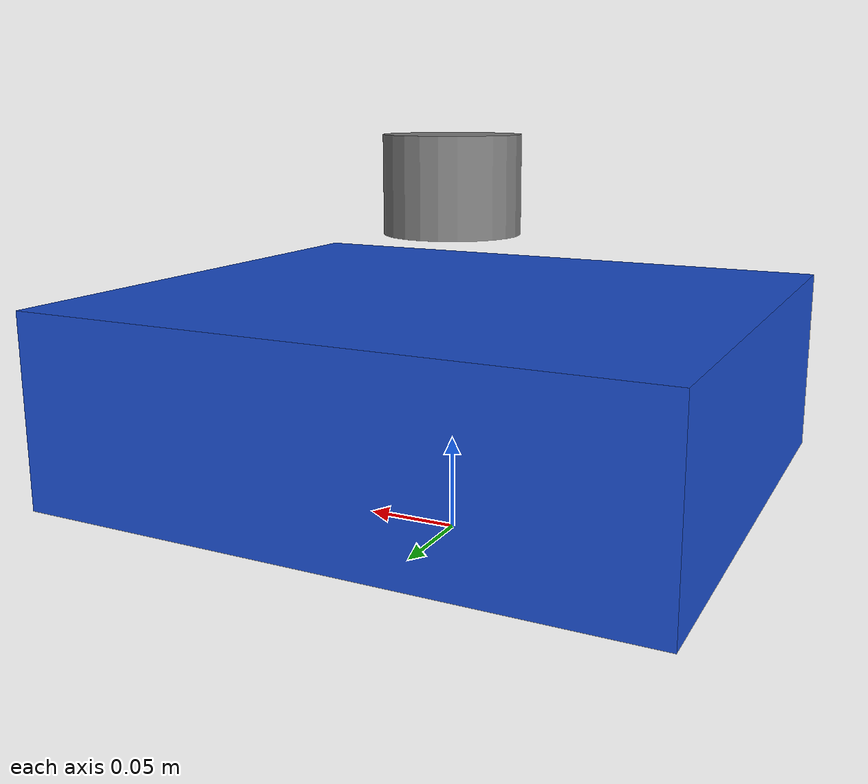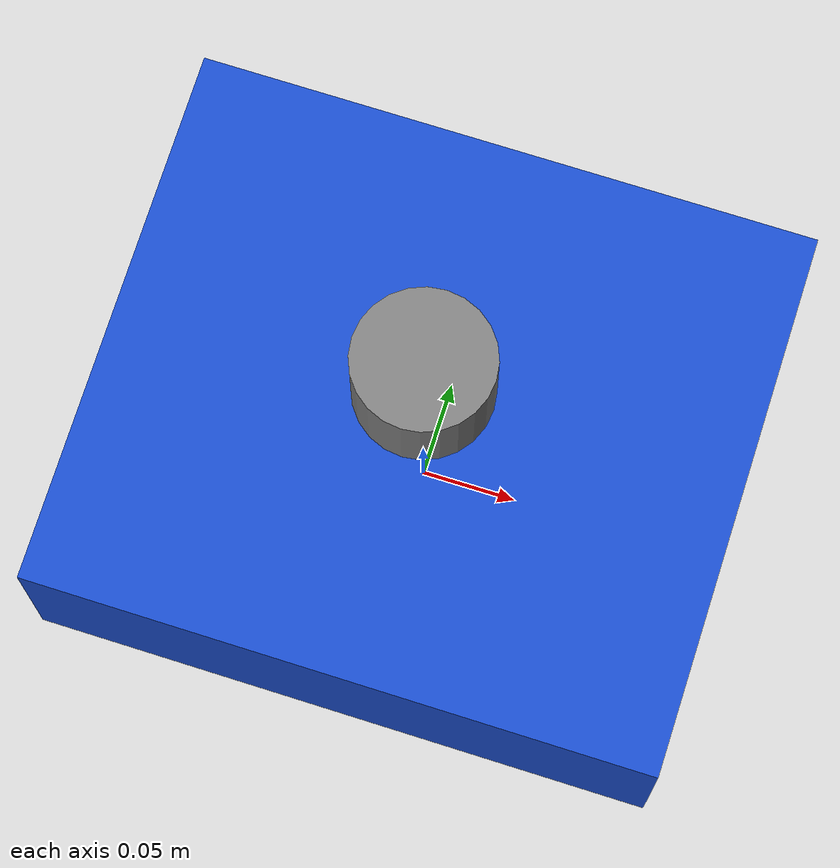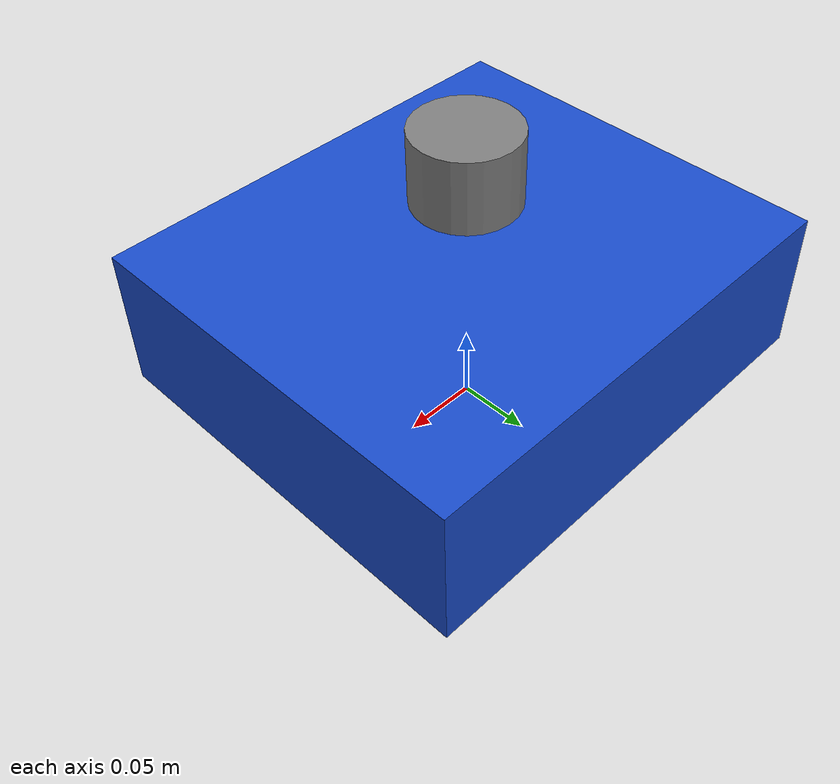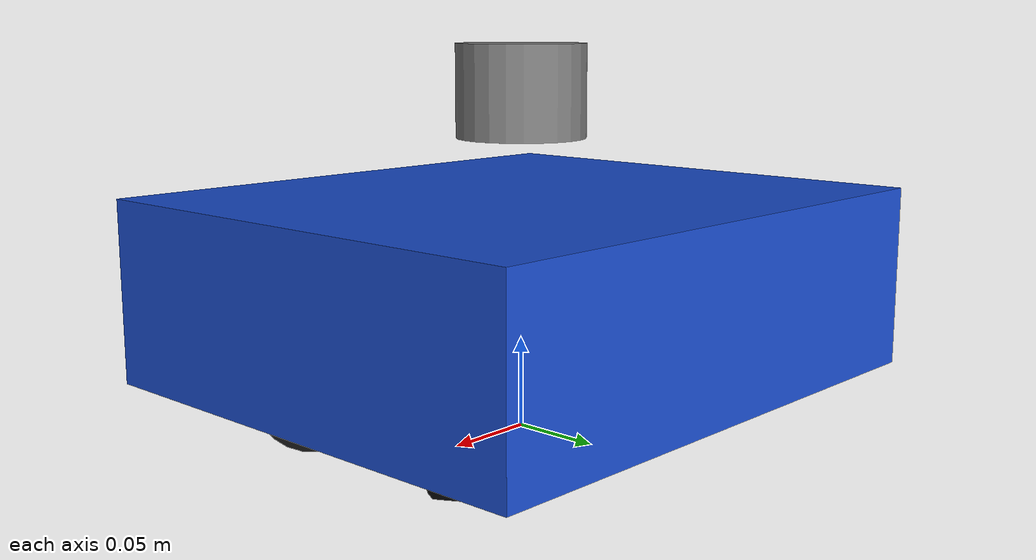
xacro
<?xml version="1.0"?>
<robot xmlns:xacro="http://www.ros.org/wiki/xacro" name="omni_robot">

  <!-- Robot dimensions -->
  <xacro:property name="base_length" value="0.32"/>
  <xacro:property name="base_width" value="0.28"/>
  <xacro:property name="base_height" value="0.10"/>

  <!-- Omni wheel -->
  <xacro:property name="wheel_radius" value="0.032"/>
  <xacro:property name="wheel_width" value="0.025"/>
  <xacro:property name="wheel_z" value="0.0"/>

  <!-- Wheel layout: front-left, front-right, rear-center -->
  <xacro:property name="wheel_x_front" value="0.0996"/>
  <xacro:property name="wheel_y_front" value="0.0575"/>
  <xacro:property name="wheel_x_rear" value="-0.115"/>

  <material name="blue">
    <color rgba="0.1 0.3 0.8 1.0"/>
  </material>
  <material name="black">
    <color rgba="0.05 0.05 0.05 1.0"/>
  </material>
  <material name="gray">
    <color rgba="0.5 0.5 0.5 1.0"/>
  </material>

  <!-- Main chassis -->
  <link name="base_link">
    <visual>
      <origin xyz="0 0 0.08"/>
      <geometry>
        <box size="${base_length} ${base_width} ${base_height}"/>
      </geometry>
      <material name="blue"/>
    </visual>
    <collision>
      <origin xyz="0 0 0.08"/>
      <geometry>
        <box size="${base_length} ${base_width} ${base_height}"/>
      </geometry>
    </collision>
    <inertial>
      <origin xyz="0 0 0.08"/>
      <mass value="5.0"/>
      <inertia ixx="0.05" ixy="0" ixz="0" iyy="0.05" iyz="0" izz="0.08"/>
    </inertial>
  </link>

  <xacro:macro name="wheel" params="name x y yaw">
    <link name="${name}">
      <visual>
        <origin xyz="0 0 0" rpy="${pi/2} 0 0"/>
        <geometry>
          <cylinder radius="${wheel_radius}" length="${wheel_width}"/>
        </geometry>
        <material name="black"/>
      </visual>
      <collision>
        <origin xyz="0 0 0" rpy="${pi/2} 0 0"/>
        <geometry>
          <cylinder radius="${wheel_radius}" length="${wheel_width}"/>
        </geometry>
      </collision>
    </link>

    <joint name="${name}_joint" type="continuous">
      <parent link="base_link"/>
      <child link="${name}"/>
      <origin xyz="${x} ${y} ${wheel_z + wheel_radius}" rpy="0 0 ${yaw}"/>
      <axis xyz="0 1 0"/>
    </joint>
  </xacro:macro>

  <!--
    Wheel 1: FRONT LEFT
    Position: +X, +Y
    Axle tangent direction: approximately 120 deg from +X
  -->
  <xacro:wheel
    name="wheel_1_front_left"
    x="${wheel_x_front}"
    y="${wheel_y_front}"
    yaw="${pi/6}"/>

  <!--
    Wheel 2: FRONT RIGHT
    Position: +X, -Y
    Axle tangent direction: approximately -120 deg from +X
  -->
  <xacro:wheel
    name="wheel_2_front_right"
    x="${wheel_x_front}"
    y="-${wheel_y_front}"
    yaw="${5*pi/6}"/>

  <!--
    Wheel 3: REAR CENTER
    Position: -X, 0
    Axle tangent direction: +Y
  -->
  <xacro:wheel
    name="wheel_3_rear"
    x="${wheel_x_rear}"
    y="0.0"
    yaw="0.0"/>

  <!-- LiDAR -->
  <link name="lidar_link">
    <visual>
      <origin xyz="0 0 0.025"/>
      <geometry>
        <cylinder radius="0.035" length="0.05"/>
      </geometry>
      <material name="gray"/>
    </visual>
  </link>

  <joint name="lidar_joint" type="fixed">
    <parent link="base_link"/>
    <child link="lidar_link"/>
    <origin xyz="0 0 0.16" rpy="0 0 0"/>
  </joint>

  <!-- IMU -->
  <link name="imu_link"/>

  <joint name="imu_joint" type="fixed">
    <parent link="base_link"/>
    <child link="imu_link"/>
    <origin xyz="0 0 0.13" rpy="0 0 0"/>
  </joint>

</robot>
